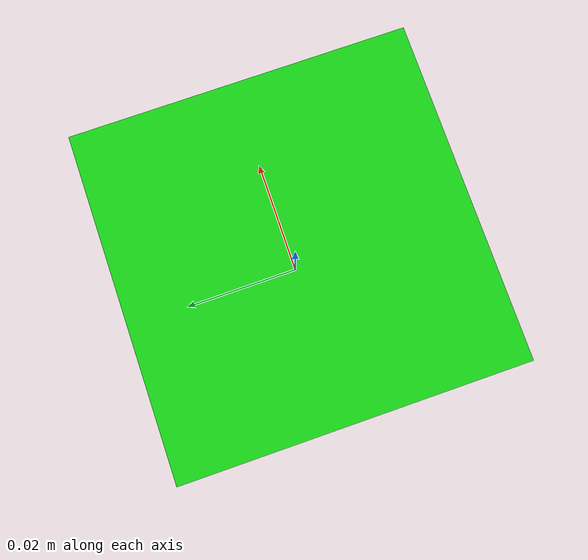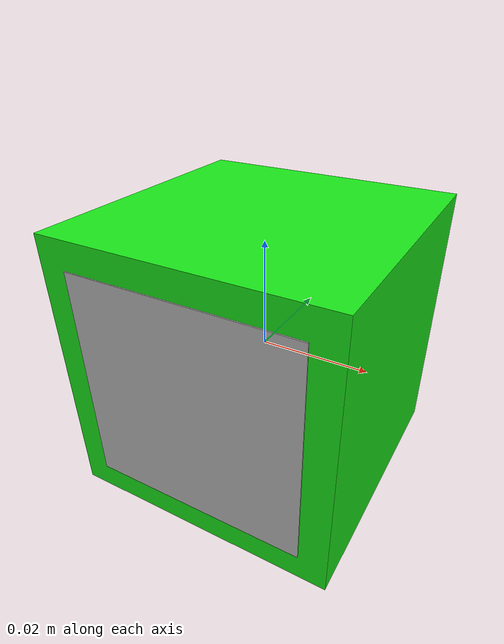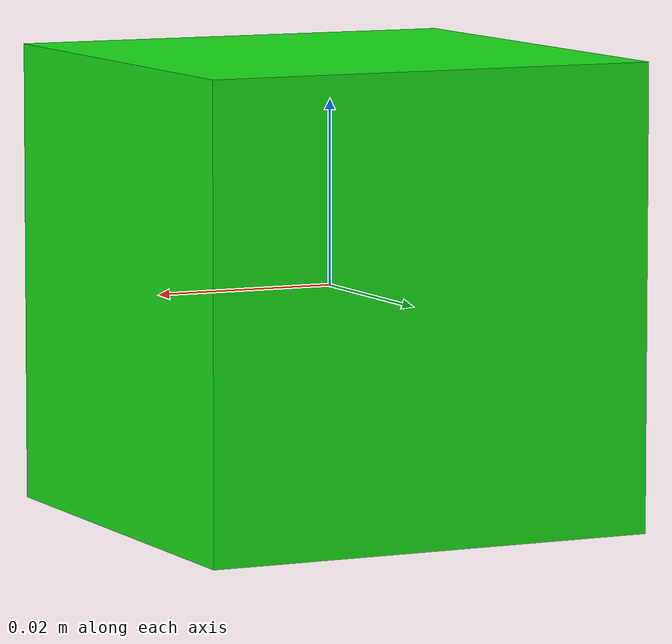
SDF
<?xml version="1.0"?>
<sdf version="1.6">
  <model name="cube_medium">
    <link name="cube_link">
      <inertial>
        <mass>0.08</mass>
        <inertia>
          <ixx>0.000033</ixx><ixy>0</ixy><ixz>0</ixz>
          <iyy>0.000033</iyy><iyz>0</iyz><izz>0.000033</izz>
        </inertia>
      </inertial>

      <collision name="collision">
        <geometry><box><size>0.05 0.05 0.05</size></box></geometry>
        <surface>
          <friction><ode><mu>100.0</mu><mu2>100.0</mu2></ode></friction>
          <contact>
            <ode>
              <kp>1000000.0</kp>
              <kd>1.0</kd>
              <max_vel>0.0</max_vel>
              <min_depth>0.001</min_depth>
            </ode>
          </contact>
        </surface>
      </collision>

      <visual name="cube_visual">
        <geometry><box><size>0.05 0.05 0.05</size></box></geometry>
        <material>
          <ambient>0.1 0.8 0.1 1</ambient>
          <diffuse>0.1 0.9 0.1 1</diffuse>
        </material>
      </visual>

      <visual name="aruco_marker">
        <pose>0 -0.0251 0 -1.5708 0 0</pose>
        <geometry><box><size>0.04 0.04 0.0002</size></box></geometry>
        <material>
          <script>
            <uri>model://cube_medium/materials/scripts</uri>
            <uri>model://cube_medium/materials/textures</uri>
            <name>CubeMedium/Aruco</name>
          </script>
        </material>
      </visual>
    </link>
  </model>
</sdf>
